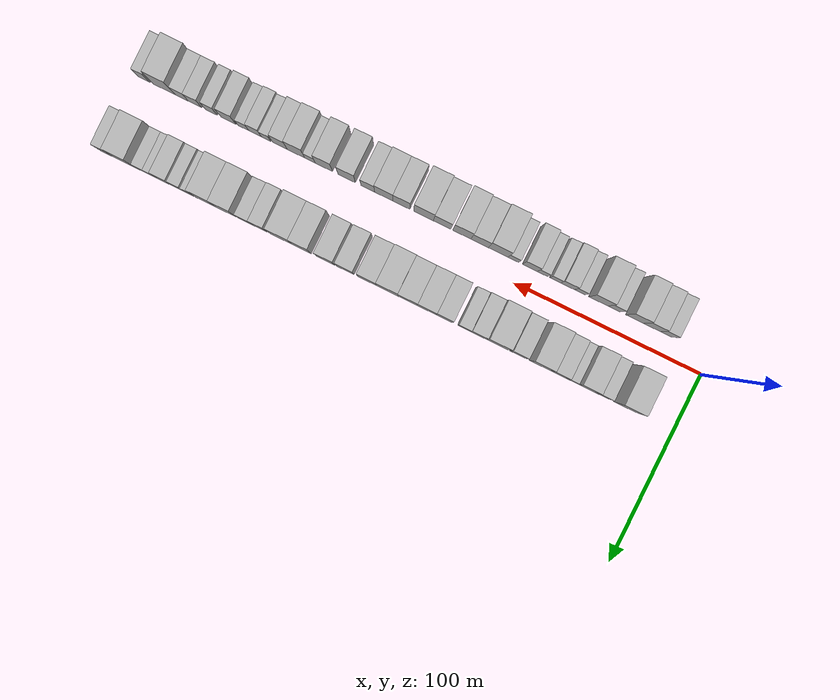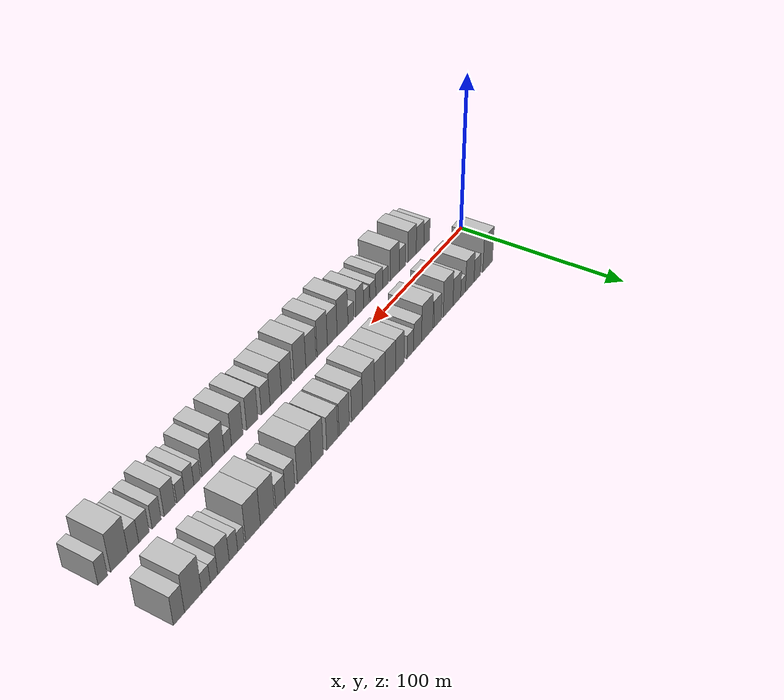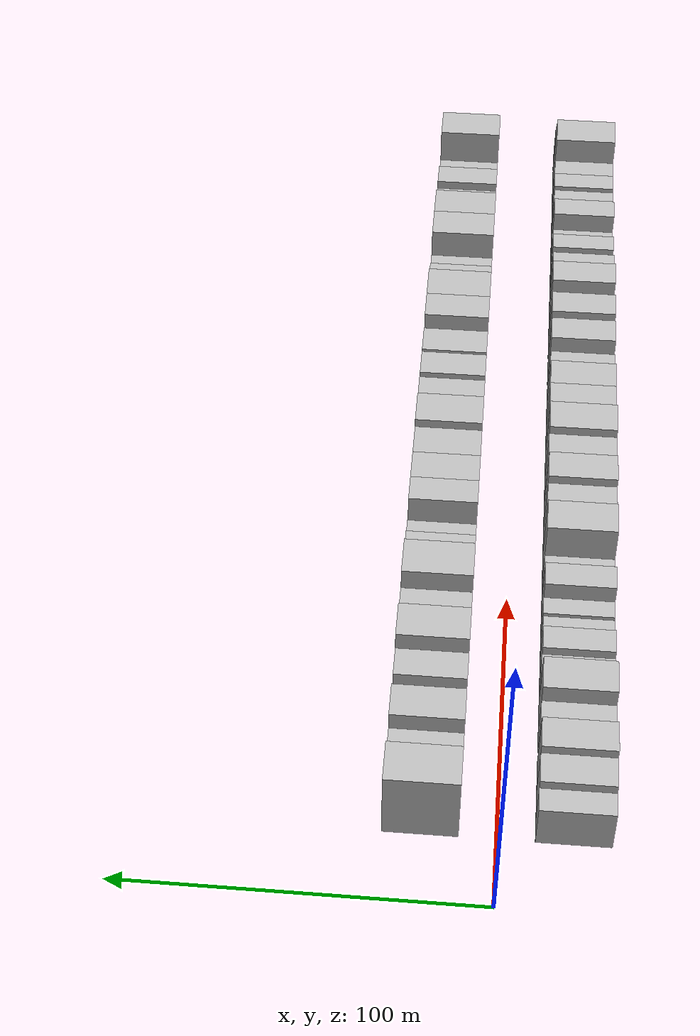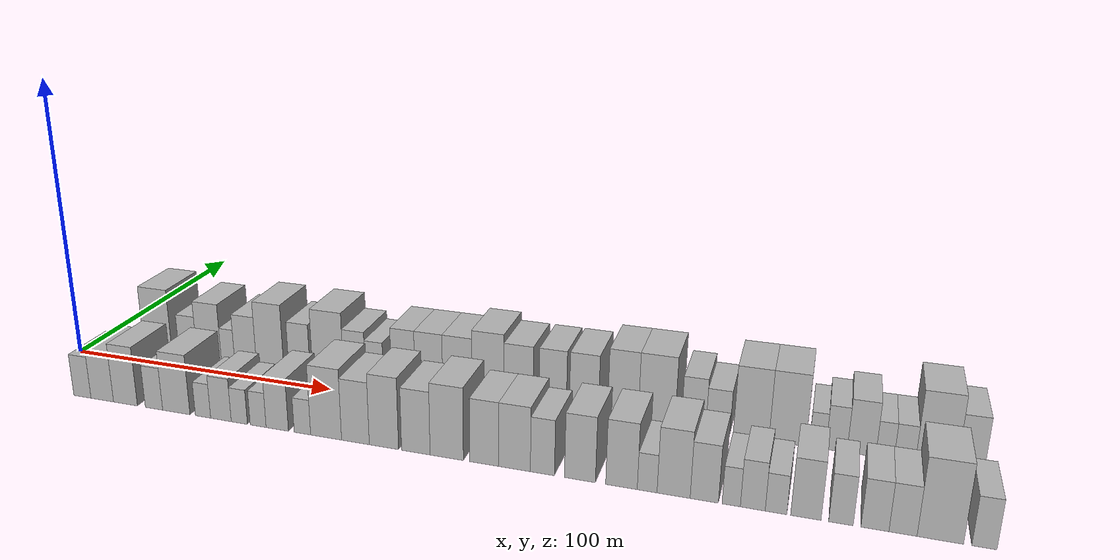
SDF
<sdf version="1.6">
 <world name="default">
  <scene>
   <sky><clouds><speed>12</speed></clouds></sky>
   <ambient>0.4 0.4 0.4 1</ambient>
   <background>0.7 0.7 0.7 1</background>
   <shadows>1</shadows>
  </scene>
  <gravity>0 0 -9.8066</gravity>
  <magnetic_field>6e-06 2.3e-05 -4.2e-05</magnetic_field>
  <physics default="0" name="default_physics" type="ode">
   <ode>
    <solver>
     <type>quick</type>
     <iters>10</iters>
     <sor>1.0</sor>
     <use_dynamic_moi_rescaling>0</use_dynamic_moi_rescaling>
    </solver>
    <constraints>
     <cfm>0</cfm>
     <erp>0.2</erp>
     <contact_max_correcting_vel>100</contact_max_correcting_vel>
     <contact_surface_layer>0.001</contact_surface_layer>
    </constraints>
   </ode>
   <max_step_size>0.004</max_step_size>
   <real_time_factor>1</real_time_factor>
   <real_time_update_rate>250</real_time_update_rate>
  </physics>
  <light name="sun" type="directional">
   <pose>0 0 10 0 0 0</pose>
   <diffuse>0.8 0.8 0.8 1</diffuse>
   <specular>0.2 0.2 0.2 1</specular>
   <attenuation>
    <range>1000</range>
    <constant>0.9</constant>
    <linear>0.01</linear>
    <quadratic>0.001</quadratic>
   </attenuation>
   <direction>-0.5 0.1 -0.9</direction>
  </light>
  <model name="building_1">
   <static>1</static>
   <pose>25.8612 20.0000 0 0.000000 0.000000 1.570796</pose>
   <link name="link">
    <pose>0 0 12.00 0 0 0</pose>
    <collision name="collision"><geometry><box><size>20.0000 11.7223 24.0000</size></box></geometry></collision>
    <visual name="visual">
     <cast_shadows>0</cast_shadows>
     <geometry><box><size>20.0000 11.7223 24.0000</size></box></geometry>
     <material>
      <script>
       <uri>model://HANNAS_wall/materials/scripts</uri>
       <uri>model://HANNAS_wall/materials/textures</uri>
       <name>vrc/HANNAS_wall</name>
      </script>
     </material>
    </visual>
   </link>
  </model>
  <model name="building_2">
   <static>1</static>
   <pose>38.4278 20.0000 0 0.000000 0.000000 1.570796</pose>
   <link name="link">
    <pose>0 0 7.50 0 0 0</pose>
    <collision name="collision"><geometry><box><size>20.0000 7.4110 15.0000</size></box></geometry></collision>
    <visual name="visual">
     <cast_shadows>0</cast_shadows>
     <geometry><box><size>20.0000 7.4110 15.0000</size></box></geometry>
     <material>
      <script>
       <uri>model://HANNAS_wall/materials/scripts</uri>
       <uri>model://HANNAS_wall/materials/textures</uri>
       <name>vrc/HANNAS_wall</name>
      </script>
     </material>
    </visual>
   </link>
  </model>
  <model name="building_3">
   <static>1</static>
   <pose>47.1122 20.0000 0 0.000000 0.000000 1.570796</pose>
   <link name="link">
    <pose>0 0 10.50 0 0 0</pose>
    <collision name="collision"><geometry><box><size>20.0000 9.9578 21.0000</size></box></geometry></collision>
    <visual name="visual">
     <cast_shadows>0</cast_shadows>
     <geometry><box><size>20.0000 9.9578 21.0000</size></box></geometry>
     <material>
      <script>
       <uri>model://HANNAS_wall/materials/scripts</uri>
       <uri>model://HANNAS_wall/materials/textures</uri>
       <name>vrc/HANNAS_wall</name>
      </script>
     </material>
    </visual>
   </link>
  </model>
  <model name="building_4">
   <static>1</static>
   <pose>54.7990 20.0000 0 0.000000 0.000000 1.570796</pose>
   <link name="link">
    <pose>0 0 6.00 0 0 0</pose>
    <collision name="collision"><geometry><box><size>20.0000 5.4158 12.0000</size></box></geometry></collision>
    <visual name="visual">
     <cast_shadows>0</cast_shadows>
     <geometry><box><size>20.0000 5.4158 12.0000</size></box></geometry>
     <material>
      <script>
       <uri>model://HANNAS_wall/materials/scripts</uri>
       <uri>model://HANNAS_wall/materials/textures</uri>
       <name>vrc/HANNAS_wall</name>
      </script>
     </material>
    </visual>
   </link>
  </model>
  <model name="building_5">
   <static>1</static>
   <pose>61.8751 20.0000 0 0.000000 0.000000 1.570796</pose>
   <link name="link">
    <pose>0 0 9.00 0 0 0</pose>
    <collision name="collision"><geometry><box><size>20.0000 8.7365 18.0000</size></box></geometry></collision>
    <visual name="visual">
     <cast_shadows>0</cast_shadows>
     <geometry><box><size>20.0000 8.7365 18.0000</size></box></geometry>
     <material>
      <script>
       <uri>model://HANNAS_wall/materials/scripts</uri>
       <uri>model://HANNAS_wall/materials/textures</uri>
       <name>vrc/HANNAS_wall</name>
      </script>
     </material>
    </visual>
   </link>
  </model>
  <model name="building_6">
   <static>1</static>
   <pose>71.6582 20.0000 0 0.000000 0.000000 1.570796</pose>
   <link name="link">
    <pose>0 0 12.00 0 0 0</pose>
    <collision name="collision"><geometry><box><size>20.0000 10.8296 24.0000</size></box></geometry></collision>
    <visual name="visual">
     <cast_shadows>0</cast_shadows>
     <geometry><box><size>20.0000 10.8296 24.0000</size></box></geometry>
     <material>
      <script>
       <uri>model://HANNAS_wall/materials/scripts</uri>
       <uri>model://HANNAS_wall/materials/textures</uri>
       <name>vrc/HANNAS_wall</name>
      </script>
     </material>
    </visual>
   </link>
  </model>
  <model name="building_7">
   <static>1</static>
   <pose>83.2071 20.0000 0 0.000000 0.000000 1.570796</pose>
   <link name="link">
    <pose>0 0 9.00 0 0 0</pose>
    <collision name="collision"><geometry><box><size>20.0000 8.2683 18.0000</size></box></geometry></collision>
    <visual name="visual">
     <cast_shadows>0</cast_shadows>
     <geometry><box><size>20.0000 8.2683 18.0000</size></box></geometry>
     <material>
      <script>
       <uri>model://HANNAS_wall/materials/scripts</uri>
       <uri>model://HANNAS_wall/materials/textures</uri>
       <name>vrc/HANNAS_wall</name>
      </script>
     </material>
    </visual>
   </link>
  </model>
  <model name="building_8">
   <static>1</static>
   <pose>94.2362 20.0000 0 0.000000 0.000000 1.570796</pose>
   <link name="link">
    <pose>0 0 12.00 0 0 0</pose>
    <collision name="collision"><geometry><box><size>20.0000 11.7899 24.0000</size></box></geometry></collision>
    <visual name="visual">
     <cast_shadows>0</cast_shadows>
     <geometry><box><size>20.0000 11.7899 24.0000</size></box></geometry>
     <material>
      <script>
       <uri>model://HANNAS_wall/materials/scripts</uri>
       <uri>model://HANNAS_wall/materials/textures</uri>
       <name>vrc/HANNAS_wall</name>
      </script>
     </material>
    </visual>
   </link>
  </model>
  <model name="building_9">
   <static>1</static>
   <pose>104.2495 20.0000 0 0.000000 0.000000 1.570796</pose>
   <link name="link">
    <pose>0 0 9.00 0 0 0</pose>
    <collision name="collision"><geometry><box><size>20.0000 8.2368 18.0000</size></box></geometry></collision>
    <visual name="visual">
     <cast_shadows>0</cast_shadows>
     <geometry><box><size>20.0000 8.2368 18.0000</size></box></geometry>
     <material>
      <script>
       <uri>model://HANNAS_wall/materials/scripts</uri>
       <uri>model://HANNAS_wall/materials/textures</uri>
       <name>vrc/HANNAS_wall</name>
      </script>
     </material>
    </visual>
   </link>
  </model>
  <model name="building_10">
   <static>1</static>
   <pose>111.7184 20.0000 0 0.000000 0.000000 1.570796</pose>
   <link name="link">
    <pose>0 0 7.50 0 0 0</pose>
    <collision name="collision"><geometry><box><size>20.0000 6.7009 15.0000</size></box></geometry></collision>
    <visual name="visual">
     <cast_shadows>0</cast_shadows>
     <geometry><box><size>20.0000 6.7009 15.0000</size></box></geometry>
     <material>
      <script>
       <uri>model://HANNAS_wall/materials/scripts</uri>
       <uri>model://HANNAS_wall/materials/textures</uri>
       <name>vrc/HANNAS_wall</name>
      </script>
     </material>
    </visual>
   </link>
  </model>
  <model name="building_11">
   <static>1</static>
   <pose>122.3707 20.0000 0 0.000000 0.000000 1.570796</pose>
   <link name="link">
    <pose>0 0 10.50 0 0 0</pose>
    <collision name="collision"><geometry><box><size>20.0000 8.6038 21.0000</size></box></geometry></collision>
    <visual name="visual">
     <cast_shadows>0</cast_shadows>
     <geometry><box><size>20.0000 8.6038 21.0000</size></box></geometry>
     <material>
      <script>
       <uri>model://HANNAS_wall/materials/scripts</uri>
       <uri>model://HANNAS_wall/materials/textures</uri>
       <name>vrc/HANNAS_wall</name>
      </script>
     </material>
    </visual>
   </link>
  </model>
  <model name="building_12">
   <static>1</static>
   <pose>131.6753 20.0000 0 0.000000 0.000000 1.570796</pose>
   <link name="link">
    <pose>0 0 10.50 0 0 0</pose>
    <collision name="collision"><geometry><box><size>20.0000 10.0054 21.0000</size></box></geometry></collision>
    <visual name="visual">
     <cast_shadows>0</cast_shadows>
     <geometry><box><size>20.0000 10.0054 21.0000</size></box></geometry>
     <material>
      <script>
       <uri>model://HANNAS_wall/materials/scripts</uri>
       <uri>model://HANNAS_wall/materials/textures</uri>
       <name>vrc/HANNAS_wall</name>
      </script>
     </material>
    </visual>
   </link>
  </model>
  <model name="building_13">
   <static>1</static>
   <pose>141.8260 20.0000 0 0.000000 0.000000 1.570796</pose>
   <link name="link">
    <pose>0 0 10.50 0 0 0</pose>
    <collision name="collision"><geometry><box><size>20.0000 10.2962 21.0000</size></box></geometry></collision>
    <visual name="visual">
     <cast_shadows>0</cast_shadows>
     <geometry><box><size>20.0000 10.2962 21.0000</size></box></geometry>
     <material>
      <script>
       <uri>model://HANNAS_wall/materials/scripts</uri>
       <uri>model://HANNAS_wall/materials/textures</uri>
       <name>vrc/HANNAS_wall</name>
      </script>
     </material>
    </visual>
   </link>
  </model>
  <model name="building_14">
   <static>1</static>
   <pose>152.6036 20.0000 0 0.000000 0.000000 1.570796</pose>
   <link name="link">
    <pose>0 0 12.00 0 0 0</pose>
    <collision name="collision"><geometry><box><size>20.0000 11.2589 24.0000</size></box></geometry></collision>
    <visual name="visual">
     <cast_shadows>0</cast_shadows>
     <geometry><box><size>20.0000 11.2589 24.0000</size></box></geometry>
     <material>
      <script>
       <uri>model://HANNAS_wall/materials/scripts</uri>
       <uri>model://HANNAS_wall/materials/textures</uri>
       <name>vrc/HANNAS_wall</name>
      </script>
     </material>
    </visual>
   </link>
  </model>
  <model name="building_15">
   <static>1</static>
   <pose>163.2316 20.0000 0 0.000000 0.000000 1.570796</pose>
   <link name="link">
    <pose>0 0 10.50 0 0 0</pose>
    <collision name="collision"><geometry><box><size>20.0000 9.9971 21.0000</size></box></geometry></collision>
    <visual name="visual">
     <cast_shadows>0</cast_shadows>
     <geometry><box><size>20.0000 9.9971 21.0000</size></box></geometry>
     <material>
      <script>
       <uri>model://HANNAS_wall/materials/scripts</uri>
       <uri>model://HANNAS_wall/materials/textures</uri>
       <name>vrc/HANNAS_wall</name>
      </script>
     </material>
    </visual>
   </link>
  </model>
  <model name="building_16">
   <static>1</static>
   <pose>174.8527 20.0000 0 0.000000 0.000000 1.570796</pose>
   <link name="link">
    <pose>0 0 10.50 0 0 0</pose>
    <collision name="collision"><geometry><box><size>20.0000 9.2451 21.0000</size></box></geometry></collision>
    <visual name="visual">
     <cast_shadows>0</cast_shadows>
     <geometry><box><size>20.0000 9.2451 21.0000</size></box></geometry>
     <material>
      <script>
       <uri>model://HANNAS_wall/materials/scripts</uri>
       <uri>model://HANNAS_wall/materials/textures</uri>
       <name>vrc/HANNAS_wall</name>
      </script>
     </material>
    </visual>
   </link>
  </model>
  <model name="building_17">
   <static>1</static>
   <pose>185.3069 20.0000 0 0.000000 0.000000 1.570796</pose>
   <link name="link">
    <pose>0 0 10.50 0 0 0</pose>
    <collision name="collision"><geometry><box><size>20.0000 9.6634 21.0000</size></box></geometry></collision>
    <visual name="visual">
     <cast_shadows>0</cast_shadows>
     <geometry><box><size>20.0000 9.6634 21.0000</size></box></geometry>
     <material>
      <script>
       <uri>model://HANNAS_wall/materials/scripts</uri>
       <uri>model://HANNAS_wall/materials/textures</uri>
       <name>vrc/HANNAS_wall</name>
      </script>
     </material>
    </visual>
   </link>
  </model>
  <model name="building_18">
   <static>1</static>
   <pose>198.1085 20.0000 0 0.000000 0.000000 1.570796</pose>
   <link name="link">
    <pose>0 0 12.00 0 0 0</pose>
    <collision name="collision"><geometry><box><size>20.0000 9.9397 24.0000</size></box></geometry></collision>
    <visual name="visual">
     <cast_shadows>0</cast_shadows>
     <geometry><box><size>20.0000 9.9397 24.0000</size></box></geometry>
     <material>
      <script>
       <uri>model://HANNAS_wall/materials/scripts</uri>
       <uri>model://HANNAS_wall/materials/textures</uri>
       <name>vrc/HANNAS_wall</name>
      </script>
     </material>
    </visual>
   </link>
  </model>
  <model name="building_19">
   <static>1</static>
   <pose>208.9604 20.0000 0 0.000000 0.000000 1.570796</pose>
   <link name="link">
    <pose>0 0 12.00 0 0 0</pose>
    <collision name="collision"><geometry><box><size>20.0000 11.7642 24.0000</size></box></geometry></collision>
    <visual name="visual">
     <cast_shadows>0</cast_shadows>
     <geometry><box><size>20.0000 11.7642 24.0000</size></box></geometry>
     <material>
      <script>
       <uri>model://HANNAS_wall/materials/scripts</uri>
       <uri>model://HANNAS_wall/materials/textures</uri>
       <name>vrc/HANNAS_wall</name>
      </script>
     </material>
    </visual>
   </link>
  </model>
  <model name="building_20">
   <static>1</static>
   <pose>220.6789 20.0000 0 0.000000 0.000000 1.570796</pose>
   <link name="link">
    <pose>0 0 9.00 0 0 0</pose>
    <collision name="collision"><geometry><box><size>20.0000 7.6727 18.0000</size></box></geometry></collision>
    <visual name="visual">
     <cast_shadows>0</cast_shadows>
     <geometry><box><size>20.0000 7.6727 18.0000</size></box></geometry>
     <material>
      <script>
       <uri>model://HANNAS_wall/materials/scripts</uri>
       <uri>model://HANNAS_wall/materials/textures</uri>
       <name>vrc/HANNAS_wall</name>
      </script>
     </material>
    </visual>
   </link>
  </model>
  <model name="building_21">
   <static>1</static>
   <pose>228.2584 20.0000 0 0.000000 0.000000 1.570796</pose>
   <link name="link">
    <pose>0 0 7.50 0 0 0</pose>
    <collision name="collision"><geometry><box><size>20.0000 7.4864 15.0000</size></box></geometry></collision>
    <visual name="visual">
     <cast_shadows>0</cast_shadows>
     <geometry><box><size>20.0000 7.4864 15.0000</size></box></geometry>
     <material>
      <script>
       <uri>model://HANNAS_wall/materials/scripts</uri>
       <uri>model://HANNAS_wall/materials/textures</uri>
       <name>vrc/HANNAS_wall</name>
      </script>
     </material>
    </visual>
   </link>
  </model>
  <model name="building_22">
   <static>1</static>
   <pose>238.4389 20.0000 0 0.000000 0.000000 1.570796</pose>
   <link name="link">
    <pose>0 0 12.00 0 0 0</pose>
    <collision name="collision"><geometry><box><size>20.0000 10.8745 24.0000</size></box></geometry></collision>
    <visual name="visual">
     <cast_shadows>0</cast_shadows>
     <geometry><box><size>20.0000 10.8745 24.0000</size></box></geometry>
     <material>
      <script>
       <uri>model://HANNAS_wall/materials/scripts</uri>
       <uri>model://HANNAS_wall/materials/textures</uri>
       <name>vrc/HANNAS_wall</name>
      </script>
     </material>
    </visual>
   </link>
  </model>
  <model name="building_23">
   <static>1</static>
   <pose>249.3946 20.0000 0 0.000000 0.000000 1.570796</pose>
   <link name="link">
    <pose>0 0 12.00 0 0 0</pose>
    <collision name="collision"><geometry><box><size>20.0000 11.0370 24.0000</size></box></geometry></collision>
    <visual name="visual">
     <cast_shadows>0</cast_shadows>
     <geometry><box><size>20.0000 11.0370 24.0000</size></box></geometry>
     <material>
      <script>
       <uri>model://HANNAS_wall/materials/scripts</uri>
       <uri>model://HANNAS_wall/materials/textures</uri>
       <name>vrc/HANNAS_wall</name>
      </script>
     </material>
    </visual>
   </link>
  </model>
  <model name="building_24">
   <static>1</static>
   <pose>258.3579 20.0000 0 0.000000 0.000000 1.570796</pose>
   <link name="link">
    <pose>0 0 6.00 0 0 0</pose>
    <collision name="collision"><geometry><box><size>20.0000 4.8894 12.0000</size></box></geometry></collision>
    <visual name="visual">
     <cast_shadows>0</cast_shadows>
     <geometry><box><size>20.0000 4.8894 12.0000</size></box></geometry>
     <material>
      <script>
       <uri>model://HANNAS_wall/materials/scripts</uri>
       <uri>model://HANNAS_wall/materials/textures</uri>
       <name>vrc/HANNAS_wall</name>
      </script>
     </material>
    </visual>
   </link>
  </model>
  <model name="building_25">
   <static>1</static>
   <pose>263.8838 20.0000 0 0.000000 0.000000 1.570796</pose>
   <link name="link">
    <pose>0 0 7.50 0 0 0</pose>
    <collision name="collision"><geometry><box><size>20.0000 6.1624 15.0000</size></box></geometry></collision>
    <visual name="visual">
     <cast_shadows>0</cast_shadows>
     <geometry><box><size>20.0000 6.1624 15.0000</size></box></geometry>
     <material>
      <script>
       <uri>model://HANNAS_wall/materials/scripts</uri>
       <uri>model://HANNAS_wall/materials/textures</uri>
       <name>vrc/HANNAS_wall</name>
      </script>
     </material>
    </visual>
   </link>
  </model>
  <model name="building_26">
   <static>1</static>
   <pose>271.0997 20.0000 0 0.000000 0.000000 1.570796</pose>
   <link name="link">
    <pose>0 0 9.00 0 0 0</pose>
    <collision name="collision"><geometry><box><size>20.0000 8.2695 18.0000</size></box></geometry></collision>
    <visual name="visual">
     <cast_shadows>0</cast_shadows>
     <geometry><box><size>20.0000 8.2695 18.0000</size></box></geometry>
     <material>
      <script>
       <uri>model://HANNAS_wall/materials/scripts</uri>
       <uri>model://HANNAS_wall/materials/textures</uri>
       <name>vrc/HANNAS_wall</name>
      </script>
     </material>
    </visual>
   </link>
  </model>
  <model name="building_27">
   <static>1</static>
   <pose>277.8459 20.0000 0 0.000000 0.000000 1.570796</pose>
   <link name="link">
    <pose>0 0 6.00 0 0 0</pose>
    <collision name="collision"><geometry><box><size>20.0000 5.2229 12.0000</size></box></geometry></collision>
    <visual name="visual">
     <cast_shadows>0</cast_shadows>
     <geometry><box><size>20.0000 5.2229 12.0000</size></box></geometry>
     <material>
      <script>
       <uri>model://HANNAS_wall/materials/scripts</uri>
       <uri>model://HANNAS_wall/materials/textures</uri>
       <name>vrc/HANNAS_wall</name>
      </script>
     </material>
    </visual>
   </link>
  </model>
  <model name="building_28">
   <static>1</static>
   <pose>283.4523 20.0000 0 0.000000 0.000000 1.570796</pose>
   <link name="link">
    <pose>0 0 6.00 0 0 0</pose>
    <collision name="collision"><geometry><box><size>20.0000 5.9900 12.0000</size></box></geometry></collision>
    <visual name="visual">
     <cast_shadows>0</cast_shadows>
     <geometry><box><size>20.0000 5.9900 12.0000</size></box></geometry>
     <material>
      <script>
       <uri>model://HANNAS_wall/materials/scripts</uri>
       <uri>model://HANNAS_wall/materials/textures</uri>
       <name>vrc/HANNAS_wall</name>
      </script>
     </material>
    </visual>
   </link>
  </model>
  <model name="building_29">
   <static>1</static>
   <pose>292.2314 20.0000 0 0.000000 0.000000 1.570796</pose>
   <link name="link">
    <pose>0 0 12.00 0 0 0</pose>
    <collision name="collision"><geometry><box><size>20.0000 11.5681 24.0000</size></box></geometry></collision>
    <visual name="visual">
     <cast_shadows>0</cast_shadows>
     <geometry><box><size>20.0000 11.5681 24.0000</size></box></geometry>
     <material>
      <script>
       <uri>model://HANNAS_wall/materials/scripts</uri>
       <uri>model://HANNAS_wall/materials/textures</uri>
       <name>vrc/HANNAS_wall</name>
      </script>
     </material>
    </visual>
   </link>
  </model>
  <model name="building_30">
   <static>1</static>
   <pose>301.7068 20.0000 0 0.000000 0.000000 1.570796</pose>
   <link name="link">
    <pose>0 0 9.00 0 0 0</pose>
    <collision name="collision"><geometry><box><size>20.0000 7.3826 18.0000</size></box></geometry></collision>
    <visual name="visual">
     <cast_shadows>0</cast_shadows>
     <geometry><box><size>20.0000 7.3826 18.0000</size></box></geometry>
     <material>
      <script>
       <uri>model://HANNAS_wall/materials/scripts</uri>
       <uri>model://HANNAS_wall/materials/textures</uri>
       <name>vrc/HANNAS_wall</name>
      </script>
     </material>
    </visual>
   </link>
  </model>
  <model name="building_31">
   <static>1</static>
   <pose>23.3865 -20.0000 0 0.000000 0.000000 1.570796</pose>
   <link name="link">
    <pose>0 0 7.50 0 0 0</pose>
    <collision name="collision"><geometry><box><size>20.0000 6.7730 15.0000</size></box></geometry></collision>
    <visual name="visual">
     <cast_shadows>0</cast_shadows>
     <geometry><box><size>20.0000 6.7730 15.0000</size></box></geometry>
     <material>
      <script>
       <uri>model://HANNAS_wall/materials/scripts</uri>
       <uri>model://HANNAS_wall/materials/textures</uri>
       <name>vrc/HANNAS_wall</name>
      </script>
     </material>
    </visual>
   </link>
  </model>
  <model name="building_32">
   <static>1</static>
   <pose>31.1684 -20.0000 0 0.000000 0.000000 1.570796</pose>
   <link name="link">
    <pose>0 0 9.00 0 0 0</pose>
    <collision name="collision"><geometry><box><size>20.0000 8.7908 18.0000</size></box></geometry></collision>
    <visual name="visual">
     <cast_shadows>0</cast_shadows>
     <geometry><box><size>20.0000 8.7908 18.0000</size></box></geometry>
     <material>
      <script>
       <uri>model://HANNAS_wall/materials/scripts</uri>
       <uri>model://HANNAS_wall/materials/textures</uri>
       <name>vrc/HANNAS_wall</name>
      </script>
     </material>
    </visual>
   </link>
  </model>
  <model name="building_33">
   <static>1</static>
   <pose>40.1596 -20.0000 0 0.000000 0.000000 1.570796</pose>
   <link name="link">
    <pose>0 0 10.50 0 0 0</pose>
    <collision name="collision"><geometry><box><size>20.0000 9.1915 21.0000</size></box></geometry></collision>
    <visual name="visual">
     <cast_shadows>0</cast_shadows>
     <geometry><box><size>20.0000 9.1915 21.0000</size></box></geometry>
     <material>
      <script>
       <uri>model://HANNAS_wall/materials/scripts</uri>
       <uri>model://HANNAS_wall/materials/textures</uri>
       <name>vrc/HANNAS_wall</name>
      </script>
     </material>
    </visual>
   </link>
  </model>
  <model name="building_34">
   <static>1</static>
   <pose>51.0352 -20.0000 0 0.000000 0.000000 1.570796</pose>
   <link name="link">
    <pose>0 0 7.50 0 0 0</pose>
    <collision name="collision"><geometry><box><size>20.0000 6.5596 15.0000</size></box></geometry></collision>
    <visual name="visual">
     <cast_shadows>0</cast_shadows>
     <geometry><box><size>20.0000 6.5596 15.0000</size></box></geometry>
     <material>
      <script>
       <uri>model://HANNAS_wall/materials/scripts</uri>
       <uri>model://HANNAS_wall/materials/textures</uri>
       <name>vrc/HANNAS_wall</name>
      </script>
     </material>
    </visual>
   </link>
  </model>
  <model name="building_35">
   <static>1</static>
   <pose>59.4114 -20.0000 0 0.000000 0.000000 1.570796</pose>
   <link name="link">
    <pose>0 0 10.50 0 0 0</pose>
    <collision name="collision"><geometry><box><size>20.0000 10.1926 21.0000</size></box></geometry></collision>
    <visual name="visual">
     <cast_shadows>0</cast_shadows>
     <geometry><box><size>20.0000 10.1926 21.0000</size></box></geometry>
     <material>
      <script>
       <uri>model://HANNAS_wall/materials/scripts</uri>
       <uri>model://HANNAS_wall/materials/textures</uri>
       <name>vrc/HANNAS_wall</name>
      </script>
     </material>
    </visual>
   </link>
  </model>
  <model name="building_36">
   <static>1</static>
   <pose>69.3150 -20.0000 0 0.000000 0.000000 1.570796</pose>
   <link name="link">
    <pose>0 0 6.00 0 0 0</pose>
    <collision name="collision"><geometry><box><size>20.0000 5.6146 12.0000</size></box></geometry></collision>
    <visual name="visual">
     <cast_shadows>0</cast_shadows>
     <geometry><box><size>20.0000 5.6146 12.0000</size></box></geometry>
     <material>
      <script>
       <uri>model://HANNAS_wall/materials/scripts</uri>
       <uri>model://HANNAS_wall/materials/textures</uri>
       <name>vrc/HANNAS_wall</name>
      </script>
     </material>
    </visual>
   </link>
  </model>
  <model name="building_37">
   <static>1</static>
   <pose>75.8591 -20.0000 0 0.000000 0.000000 1.570796</pose>
   <link name="link">
    <pose>0 0 7.50 0 0 0</pose>
    <collision name="collision"><geometry><box><size>20.0000 7.4736 15.0000</size></box></geometry></collision>
    <visual name="visual">
     <cast_shadows>0</cast_shadows>
     <geometry><box><size>20.0000 7.4736 15.0000</size></box></geometry>
     <material>
      <script>
       <uri>model://HANNAS_wall/materials/scripts</uri>
       <uri>model://HANNAS_wall/materials/textures</uri>
       <name>vrc/HANNAS_wall</name>
      </script>
     </material>
    </visual>
   </link>
  </model>
  <model name="building_38">
   <static>1</static>
   <pose>82.4997 -20.0000 0 0.000000 0.000000 1.570796</pose>
   <link name="link">
    <pose>0 0 6.00 0 0 0</pose>
    <collision name="collision"><geometry><box><size>20.0000 5.8074 12.0000</size></box></geometry></collision>
    <visual name="visual">
     <cast_shadows>0</cast_shadows>
     <geometry><box><size>20.0000 5.8074 12.0000</size></box></geometry>
     <material>
      <script>
       <uri>model://HANNAS_wall/materials/scripts</uri>
       <uri>model://HANNAS_wall/materials/textures</uri>
       <name>vrc/HANNAS_wall</name>
      </script>
     </material>
    </visual>
   </link>
  </model>
  <model name="building_39">
   <static>1</static>
   <pose>89.2289 -20.0000 0 0.000000 0.000000 1.570796</pose>
   <link name="link">
    <pose>0 0 6.00 0 0 0</pose>
    <collision name="collision"><geometry><box><size>20.0000 5.6512 12.0000</size></box></geometry></collision>
    <visual name="visual">
     <cast_shadows>0</cast_shadows>
     <geometry><box><size>20.0000 5.6512 12.0000</size></box></geometry>
     <material>
      <script>
       <uri>model://HANNAS_wall/materials/scripts</uri>
       <uri>model://HANNAS_wall/materials/textures</uri>
       <name>vrc/HANNAS_wall</name>
      </script>
     </material>
    </visual>
   </link>
  </model>
  <model name="building_40">
   <static>1</static>
   <pose>95.9814 -20.0000 0 0.000000 0.000000 1.570796</pose>
   <link name="link">
    <pose>0 0 9.00 0 0 0</pose>
    <collision name="collision"><geometry><box><size>20.0000 7.8538 18.0000</size></box></geometry></collision>
    <visual name="visual">
     <cast_shadows>0</cast_shadows>
     <geometry><box><size>20.0000 7.8538 18.0000</size></box></geometry>
     <material>
      <script>
       <uri>model://HANNAS_wall/materials/scripts</uri>
       <uri>model://HANNAS_wall/materials/textures</uri>
       <name>vrc/HANNAS_wall</name>
      </script>
     </material>
    </visual>
   </link>
  </model>
  <model name="building_41">
   <static>1</static>
   <pose>104.7569 -20.0000 0 0.000000 0.000000 1.570796</pose>
   <link name="link">
    <pose>0 0 6.00 0 0 0</pose>
    <collision name="collision"><geometry><box><size>20.0000 5.6973 12.0000</size></box></geometry></collision>
    <visual name="visual">
     <cast_shadows>0</cast_shadows>
     <geometry><box><size>20.0000 5.6973 12.0000</size></box></geometry>
     <material>
      <script>
       <uri>model://HANNAS_wall/materials/scripts</uri>
       <uri>model://HANNAS_wall/materials/textures</uri>
       <name>vrc/HANNAS_wall</name>
      </script>
     </material>
    </visual>
   </link>
  </model>
  <model name="building_42">
   <static>1</static>
   <pose>112.8901 -20.0000 0 0.000000 0.000000 1.570796</pose>
   <link name="link">
    <pose>0 0 12.00 0 0 0</pose>
    <collision name="collision"><geometry><box><size>20.0000 10.5692 24.0000</size></box></geometry></collision>
    <visual name="visual">
     <cast_shadows>0</cast_shadows>
     <geometry><box><size>20.0000 10.5692 24.0000</size></box></geometry>
     <material>
      <script>
       <uri>model://HANNAS_wall/materials/scripts</uri>
       <uri>model://HANNAS_wall/materials/textures</uri>
       <name>vrc/HANNAS_wall</name>
      </script>
     </material>
    </visual>
   </link>
  </model>
  <model name="building_43">
   <static>1</static>
   <pose>122.8302 -20.0000 0 0.000000 0.000000 1.570796</pose>
   <link name="link">
    <pose>0 0 10.50 0 0 0</pose>
    <collision name="collision"><geometry><box><size>20.0000 9.3109 21.0000</size></box></geometry></collision>
    <visual name="visual">
     <cast_shadows>0</cast_shadows>
     <geometry><box><size>20.0000 9.3109 21.0000</size></box></geometry>
     <material>
      <script>
       <uri>model://HANNAS_wall/materials/scripts</uri>
       <uri>model://HANNAS_wall/materials/textures</uri>
       <name>vrc/HANNAS_wall</name>
      </script>
     </material>
    </visual>
   </link>
  </model>
  <model name="building_44">
   <static>1</static>
   <pose>132.3225 -20.0000 0 0.000000 0.000000 1.570796</pose>
   <link name="link">
    <pose>0 0 12.00 0 0 0</pose>
    <collision name="collision"><geometry><box><size>20.0000 9.6737 24.0000</size></box></geometry></collision>
    <visual name="visual">
     <cast_shadows>0</cast_shadows>
     <geometry><box><size>20.0000 9.6737 24.0000</size></box></geometry>
     <material>
      <script>
       <uri>model://HANNAS_wall/materials/scripts</uri>
       <uri>model://HANNAS_wall/materials/textures</uri>
       <name>vrc/HANNAS_wall</name>
      </script>
     </material>
    </visual>
   </link>
  </model>
  <model name="building_45">
   <static>1</static>
   <pose>142.7796 -20.0000 0 0.000000 0.000000 1.570796</pose>
   <link name="link">
    <pose>0 0 10.50 0 0 0</pose>
    <collision name="collision"><geometry><box><size>20.0000 9.2405 21.0000</size></box></geometry></collision>
    <visual name="visual">
     <cast_shadows>0</cast_shadows>
     <geometry><box><size>20.0000 9.2405 21.0000</size></box></geometry>
     <material>
      <script>
       <uri>model://HANNAS_wall/materials/scripts</uri>
       <uri>model://HANNAS_wall/materials/textures</uri>
       <name>vrc/HANNAS_wall</name>
      </script>
     </material>
    </visual>
   </link>
  </model>
  <model name="building_46">
   <static>1</static>
   <pose>152.7183 -20.0000 0 0.000000 0.000000 1.570796</pose>
   <link name="link">
    <pose>0 0 12.00 0 0 0</pose>
    <collision name="collision"><geometry><box><size>20.0000 10.6368 24.0000</size></box></geometry></collision>
    <visual name="visual">
     <cast_shadows>0</cast_shadows>
     <geometry><box><size>20.0000 10.6368 24.0000</size></box></geometry>
     <material>
      <script>
       <uri>model://HANNAS_wall/materials/scripts</uri>
       <uri>model://HANNAS_wall/materials/textures</uri>
       <name>vrc/HANNAS_wall</name>
      </script>
     </material>
    </visual>
   </link>
  </model>
  <model name="building_47">
   <static>1</static>
   <pose>164.5350 -20.0000 0 0.000000 0.000000 1.570796</pose>
   <link name="link">
    <pose>0 0 10.50 0 0 0</pose>
    <collision name="collision"><geometry><box><size>20.0000 8.9967 21.0000</size></box></geometry></collision>
    <visual name="visual">
     <cast_shadows>0</cast_shadows>
     <geometry><box><size>20.0000 8.9967 21.0000</size></box></geometry>
     <material>
      <script>
       <uri>model://HANNAS_wall/materials/scripts</uri>
       <uri>model://HANNAS_wall/materials/textures</uri>
       <name>vrc/HANNAS_wall</name>
      </script>
     </material>
    </visual>
   </link>
  </model>
  <model name="building_48">
   <static>1</static>
   <pose>173.9325 -20.0000 0 0.000000 0.000000 1.570796</pose>
   <link name="link">
    <pose>0 0 10.50 0 0 0</pose>
    <collision name="collision"><geometry><box><size>20.0000 9.7983 21.0000</size></box></geometry></collision>
    <visual name="visual">
     <cast_shadows>0</cast_shadows>
     <geometry><box><size>20.0000 9.7983 21.0000</size></box></geometry>
     <material>
      <script>
       <uri>model://HANNAS_wall/materials/scripts</uri>
       <uri>model://HANNAS_wall/materials/textures</uri>
       <name>vrc/HANNAS_wall</name>
      </script>
     </material>
    </visual>
   </link>
  </model>
  <model name="building_49">
   <static>1</static>
   <pose>182.4798 -20.0000 0 0.000000 0.000000 1.570796</pose>
   <link name="link">
    <pose>0 0 9.00 0 0 0</pose>
    <collision name="collision"><geometry><box><size>20.0000 7.2963 18.0000</size></box></geometry></collision>
    <visual name="visual">
     <cast_shadows>0</cast_shadows>
     <geometry><box><size>20.0000 7.2963 18.0000</size></box></geometry>
     <material>
      <script>
       <uri>model://HANNAS_wall/materials/scripts</uri>
       <uri>model://HANNAS_wall/materials/textures</uri>
       <name>vrc/HANNAS_wall</name>
      </script>
     </material>
    </visual>
   </link>
  </model>
  <model name="building_50">
   <static>1</static>
   <pose>193.7291 -20.0000 0 0.000000 0.000000 1.570796</pose>
   <link name="link">
    <pose>0 0 10.50 0 0 0</pose>
    <collision name="collision"><geometry><box><size>20.0000 9.2023 21.0000</size></box></geometry></collision>
    <visual name="visual">
     <cast_shadows>0</cast_shadows>
     <geometry><box><size>20.0000 9.2023 21.0000</size></box></geometry>
     <material>
      <script>
       <uri>model://HANNAS_wall/materials/scripts</uri>
       <uri>model://HANNAS_wall/materials/textures</uri>
       <name>vrc/HANNAS_wall</name>
      </script>
     </material>
    </visual>
   </link>
  </model>
  <model name="building_51">
   <static>1</static>
   <pose>205.9133 -20.0000 0 0.000000 0.000000 1.570796</pose>
   <link name="link">
    <pose>0 0 10.50 0 0 0</pose>
    <collision name="collision"><geometry><box><size>20.0000 9.1662 21.0000</size></box></geometry></collision>
    <visual name="visual">
     <cast_shadows>0</cast_shadows>
     <geometry><box><size>20.0000 9.1662 21.0000</size></box></geometry>
     <material>
      <script>
       <uri>model://HANNAS_wall/materials/scripts</uri>
       <uri>model://HANNAS_wall/materials/textures</uri>
       <name>vrc/HANNAS_wall</name>
      </script>
     </material>
    </visual>
   </link>
  </model>
  <model name="building_52">
   <static>1</static>
   <pose>213.3339 -20.0000 0 0.000000 0.000000 1.570796</pose>
   <link name="link">
    <pose>0 0 6.00 0 0 0</pose>
    <collision name="collision"><geometry><box><size>20.0000 5.6749 12.0000</size></box></geometry></collision>
    <visual name="visual">
     <cast_shadows>0</cast_shadows>
     <geometry><box><size>20.0000 5.6749 12.0000</size></box></geometry>
     <material>
      <script>
       <uri>model://HANNAS_wall/materials/scripts</uri>
       <uri>model://HANNAS_wall/materials/textures</uri>
       <name>vrc/HANNAS_wall</name>
      </script>
     </material>
    </visual>
   </link>
  </model>
  <model name="building_53">
   <static>1</static>
   <pose>220.8471 -20.0000 0 0.000000 0.000000 1.570796</pose>
   <link name="link">
    <pose>0 0 10.50 0 0 0</pose>
    <collision name="collision"><geometry><box><size>20.0000 9.3514 21.0000</size></box></geometry></collision>
    <visual name="visual">
     <cast_shadows>0</cast_shadows>
     <geometry><box><size>20.0000 9.3514 21.0000</size></box></geometry>
     <material>
      <script>
       <uri>model://HANNAS_wall/materials/scripts</uri>
       <uri>model://HANNAS_wall/materials/textures</uri>
       <name>vrc/HANNAS_wall</name>
      </script>
     </material>
    </visual>
   </link>
  </model>
  <model name="building_54">
   <static>1</static>
   <pose>229.4571 -20.0000 0 0.000000 0.000000 1.570796</pose>
   <link name="link">
    <pose>0 0 9.00 0 0 0</pose>
    <collision name="collision"><geometry><box><size>20.0000 7.8686 18.0000</size></box></geometry></collision>
    <visual name="visual">
     <cast_shadows>0</cast_shadows>
     <geometry><box><size>20.0000 7.8686 18.0000</size></box></geometry>
     <material>
      <script>
       <uri>model://HANNAS_wall/materials/scripts</uri>
       <uri>model://HANNAS_wall/materials/textures</uri>
       <name>vrc/HANNAS_wall</name>
      </script>
     </material>
    </visual>
   </link>
  </model>
  <model name="building_55">
   <static>1</static>
   <pose>236.8981 -20.0000 0 0.000000 0.000000 1.570796</pose>
   <link name="link">
    <pose>0 0 6.00 0 0 0</pose>
    <collision name="collision"><geometry><box><size>20.0000 5.0133 12.0000</size></box></geometry></collision>
    <visual name="visual">
     <cast_shadows>0</cast_shadows>
     <geometry><box><size>20.0000 5.0133 12.0000</size></box></geometry>
     <material>
      <script>
       <uri>model://HANNAS_wall/materials/scripts</uri>
       <uri>model://HANNAS_wall/materials/textures</uri>
       <name>vrc/HANNAS_wall</name>
      </script>
     </material>
    </visual>
   </link>
  </model>
  <model name="building_56">
   <static>1</static>
   <pose>242.7785 -20.0000 0 0.000000 0.000000 1.570796</pose>
   <link name="link">
    <pose>0 0 7.50 0 0 0</pose>
    <collision name="collision"><geometry><box><size>20.0000 6.7475 15.0000</size></box></geometry></collision>
    <visual name="visual">
     <cast_shadows>0</cast_shadows>
     <geometry><box><size>20.0000 6.7475 15.0000</size></box></geometry>
     <material>
      <script>
       <uri>model://HANNAS_wall/materials/scripts</uri>
       <uri>model://HANNAS_wall/materials/textures</uri>
       <name>vrc/HANNAS_wall</name>
      </script>
     </material>
    </visual>
   </link>
  </model>
  <model name="building_57">
   <static>1</static>
   <pose>249.0545 -20.0000 0 0.000000 0.000000 1.570796</pose>
   <link name="link">
    <pose>0 0 6.00 0 0 0</pose>
    <collision name="collision"><geometry><box><size>20.0000 5.8046 12.0000</size></box></geometry></collision>
    <visual name="visual">
     <cast_shadows>0</cast_shadows>
     <geometry><box><size>20.0000 5.8046 12.0000</size></box></geometry>
     <material>
      <script>
       <uri>model://HANNAS_wall/materials/scripts</uri>
       <uri>model://HANNAS_wall/materials/textures</uri>
       <name>vrc/HANNAS_wall</name>
      </script>
     </material>
    </visual>
   </link>
  </model>
  <model name="building_58">
   <static>1</static>
   <pose>256.9807 -20.0000 0 0.000000 0.000000 1.570796</pose>
   <link name="link">
    <pose>0 0 9.00 0 0 0</pose>
    <collision name="collision"><geometry><box><size>20.0000 8.0478 18.0000</size></box></geometry></collision>
    <visual name="visual">
     <cast_shadows>0</cast_shadows>
     <geometry><box><size>20.0000 8.0478 18.0000</size></box></geometry>
     <material>
      <script>
       <uri>model://HANNAS_wall/materials/scripts</uri>
       <uri>model://HANNAS_wall/materials/textures</uri>
       <name>vrc/HANNAS_wall</name>
      </script>
     </material>
    </visual>
   </link>
  </model>
  <model name="building_59">
   <static>1</static>
   <pose>266.1766 -20.0000 0 0.000000 0.000000 1.570796</pose>
   <link name="link">
    <pose>0 0 7.50 0 0 0</pose>
    <collision name="collision"><geometry><box><size>20.0000 6.3439 15.0000</size></box></geometry></collision>
    <visual name="visual">
     <cast_shadows>0</cast_shadows>
     <geometry><box><size>20.0000 6.3439 15.0000</size></box></geometry>
     <material>
      <script>
       <uri>model://HANNAS_wall/materials/scripts</uri>
       <uri>model://HANNAS_wall/materials/textures</uri>
       <name>vrc/HANNAS_wall</name>
      </script>
     </material>
    </visual>
   </link>
  </model>
  <model name="building_60">
   <static>1</static>
   <pose>274.9148 -20.0000 0 0.000000 0.000000 1.570796</pose>
   <link name="link">
    <pose>0 0 7.50 0 0 0</pose>
    <collision name="collision"><geometry><box><size>20.0000 7.1326 15.0000</size></box></geometry></collision>
    <visual name="visual">
     <cast_shadows>0</cast_shadows>
     <geometry><box><size>20.0000 7.1326 15.0000</size></box></geometry>
     <material>
      <script>
       <uri>model://HANNAS_wall/materials/scripts</uri>
       <uri>model://HANNAS_wall/materials/textures</uri>
       <name>vrc/HANNAS_wall</name>
      </script>
     </material>
    </visual>
   </link>
  </model>
  <model name="building_61">
   <static>1</static>
   <pose>282.0212 -20.0000 0 0.000000 0.000000 1.570796</pose>
   <link name="link">
    <pose>0 0 7.50 0 0 0</pose>
    <collision name="collision"><geometry><box><size>20.0000 7.0802 15.0000</size></box></geometry></collision>
    <visual name="visual">
     <cast_shadows>0</cast_shadows>
     <geometry><box><size>20.0000 7.0802 15.0000</size></box></geometry>
     <material>
      <script>
       <uri>model://HANNAS_wall/materials/scripts</uri>
       <uri>model://HANNAS_wall/materials/textures</uri>
       <name>vrc/HANNAS_wall</name>
      </script>
     </material>
    </visual>
   </link>
  </model>
  <model name="building_62">
   <static>1</static>
   <pose>291.3152 -20.0000 0 0.000000 0.000000 1.570796</pose>
   <link name="link">
    <pose>0 0 12.00 0 0 0</pose>
    <collision name="collision"><geometry><box><size>20.0000 11.5079 24.0000</size></box></geometry></collision>
    <visual name="visual">
     <cast_shadows>0</cast_shadows>
     <geometry><box><size>20.0000 11.5079 24.0000</size></box></geometry>
     <material>
      <script>
       <uri>model://HANNAS_wall/materials/scripts</uri>
       <uri>model://HANNAS_wall/materials/textures</uri>
       <name>vrc/HANNAS_wall</name>
      </script>
     </material>
    </visual>
   </link>
  </model>
  <model name="building_63">
   <static>1</static>
   <pose>302.1097 -20.0000 0 0.000000 0.000000 1.570796</pose>
   <link name="link">
    <pose>0 0 7.50 0 0 0</pose>
    <collision name="collision"><geometry><box><size>20.0000 6.0811 15.0000</size></box></geometry></collision>
    <visual name="visual">
     <cast_shadows>0</cast_shadows>
     <geometry><box><size>20.0000 6.0811 15.0000</size></box></geometry>
     <material>
      <script>
       <uri>model://HANNAS_wall/materials/scripts</uri>
       <uri>model://HANNAS_wall/materials/textures</uri>
       <name>vrc/HANNAS_wall</name>
      </script>
     </material>
    </visual>
   </link>
  </model>
 </world>
</sdf>
